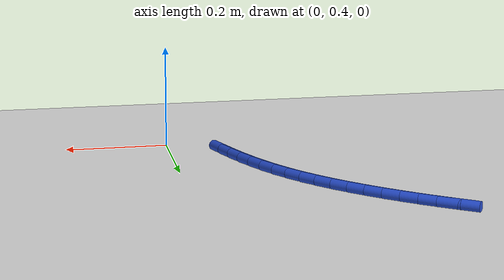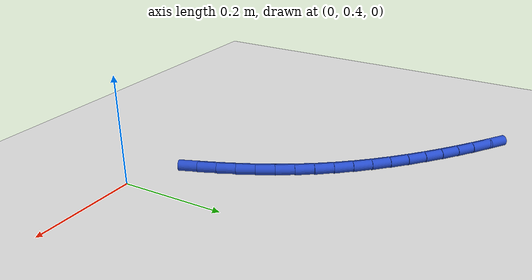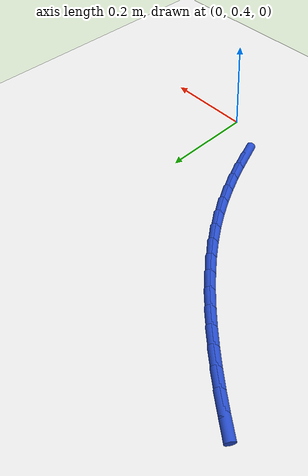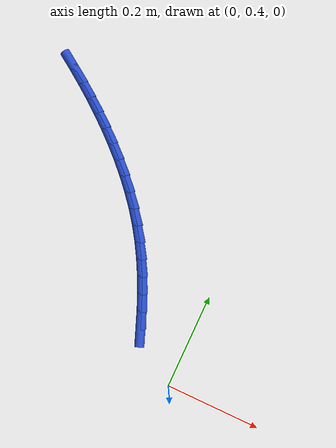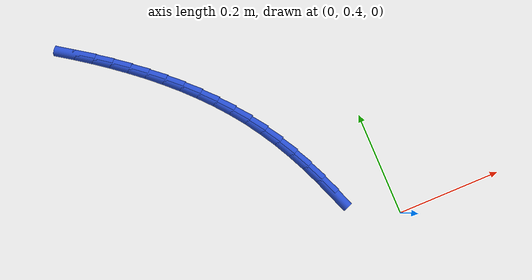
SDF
<sdf version="1.6">
 <world name="default">
  <model name="ground_plane">
   <static>1</static>
   <link name="link">
    <collision name="collision">
     <geometry><plane><normal>0 0 1</normal><size>100 100</size></plane></geometry>
     <surface><friction><ode><mu>100</mu><mu2>50</mu2></ode></friction></surface>
    </collision>
    <visual name="visual">
     <cast_shadows>0</cast_shadows>
     <geometry><plane><normal>0 0 1</normal><size>100 100</size></plane></geometry>
     <material>
      <script><uri>file://media/materials/scripts/gazebo.material</uri><name>Gazebo/WhiteGlow</name></script>
     </material>
    </visual>
   </link>
  </model>
  <model name="line">
   <link name="link_14">
    <pose>-0.10286140944806886 0.48466427148736574 0.01 0 1.57 -1.1949586788717386</pose>
    <collision name="collision">
     <geometry><cylinder><radius>0.01</radius><length>0.08</length></cylinder></geometry>
    </collision>
    <visual name="visual">
     <material>
      <script><name>Gazebo/Blue</name><uri>file://media/materials/scripts/gazebo.material</uri></script>
     </material>
     <geometry><cylinder><radius>0.01</radius><length>0.08</length></cylinder></geometry>
    </visual>
   </link>
   <link name="link_15">
    <pose>-0.11590505456979558 0.5177201066402711 0.01 0 1.57 -1.1605237380094044</pose>
    <collision name="collision">
     <geometry><cylinder><radius>0.01</radius><length>0.08</length></cylinder></geometry>
    </collision>
    <visual name="visual">
     <material>
      <script><name>Gazebo/Blue</name><uri>file://media/materials/scripts/gazebo.material</uri></script>
     </material>
     <geometry><cylinder><radius>0.01</radius><length>0.08</length></cylinder></geometry>
    </visual>
   </link>
   <link name="link_16">
    <pose>-0.13003497999350594 0.5502060301641614 0.01 0 1.57 -1.1221062574177487</pose>
    <collision name="collision">
     <geometry><cylinder><radius>0.01</radius><length>0.08</length></cylinder></geometry>
    </collision>
    <visual name="visual">
     <material>
      <script><name>Gazebo/Blue</name><uri>file://media/materials/scripts/gazebo.material</uri></script>
     </material>
     <geometry><cylinder><radius>0.01</radius><length>0.08</length></cylinder></geometry>
    </visual>
   </link>
   <link name="link_17">
    <pose>-0.14535711199621087 0.5820316289772426 0.01 0 1.57 -1.0796620651295834</pose>
    <collision name="collision">
     <geometry><cylinder><radius>0.01</radius><length>0.08</length></cylinder></geometry>
    </collision>
    <visual name="visual">
     <material>
      <script><name>Gazebo/Blue</name><uri>file://media/materials/scripts/gazebo.material</uri></script>
     </material>
     <geometry><cylinder><radius>0.01</radius><length>0.08</length></cylinder></geometry>
    </visual>
   </link>
   <link name="link_18">
    <pose>-0.16197737685492147 0.6131064899977213 0.01 0 1.57 -1.0332003728123056</pose>
    <collision name="collision">
     <geometry><cylinder><radius>0.01</radius><length>0.08</length></cylinder></geometry>
    </collision>
    <visual name="visual">
     <material>
      <script><name>Gazebo/Blue</name><uri>file://media/materials/scripts/gazebo.material</uri></script>
     </material>
     <geometry><cylinder><radius>0.01</radius><length>0.08</length></cylinder></geometry>
    </visual>
   </link>
   <link name="link_19">
    <pose>-0.18000170084664874 0.6433402001438037 0.01 0 1.57 -0.9828084889556159</pose>
    <collision name="collision">
     <geometry><cylinder><radius>0.01</radius><length>0.08</length></cylinder></geometry>
    </collision>
    <visual name="visual">
     <material>
      <script><name>Gazebo/Blue</name><uri>file://media/materials/scripts/gazebo.material</uri></script>
     </material>
     <geometry><cylinder><radius>0.01</radius><length>0.08</length></cylinder></geometry>
    </visual>
   </link>
   <link name="link_20">
    <pose>-0.19953587932387218 0.6726424052973401 0.01 0 1.57 -0.9305583617726472</pose>
    <collision name="collision">
     <geometry><cylinder><radius>0.01</radius><length>0.08</length></cylinder></geometry>
    </collision>
    <visual name="visual">
     <material>
      <script><name>Gazebo/Blue</name><uri>file://media/materials/scripts/gazebo.material</uri></script>
     </material>
     <geometry><cylinder><radius>0.01</radius><length>0.08</length></cylinder></geometry>
    </visual>
   </link>
   <link name="link_21">
    <pose>-0.22062325139379949 0.700950879359868 0.01 0 1.57 -0.8814752981085816</pose>
    <collision name="collision">
     <geometry><cylinder><radius>0.01</radius><length>0.08</length></cylinder></geometry>
    </collision>
    <visual name="visual">
     <material>
      <script><name>Gazebo/Blue</name><uri>file://media/materials/scripts/gazebo.material</uri></script>
     </material>
     <geometry><cylinder><radius>0.01</radius><length>0.08</length></cylinder></geometry>
    </visual>
   </link>
   <link name="link_22">
    <pose>-0.24314488133618367 0.7282764789089937 0.01 0 1.57 -0.836262044691703</pose>
    <collision name="collision">
     <geometry><cylinder><radius>0.01</radius><length>0.08</length></cylinder></geometry>
    </collision>
    <visual name="visual">
     <material>
      <script><name>Gazebo/Blue</name><uri>file://media/materials/scripts/gazebo.material</uri></script>
     </material>
     <geometry><cylinder><radius>0.01</radius><length>0.08</length></cylinder></geometry>
    </visual>
   </link>
   <link name="link_23">
    <pose>-0.266955818069513 0.7546417768941707 0.01 0 1.57 -0.7947716503147767</pose>
    <collision name="collision">
     <geometry><cylinder><radius>0.01</radius><length>0.08</length></cylinder></geometry>
    </collision>
    <visual name="visual">
     <material>
      <script><name>Gazebo/Blue</name><uri>file://media/materials/scripts/gazebo.material</uri></script>
     </material>
     <geometry><cylinder><radius>0.01</radius><length>0.08</length></cylinder></geometry>
    </visual>
   </link>
   <link name="link_24">
    <pose>-0.29191111051227586 0.7800693462648527 0.01 0 1.57 -0.7568272609245303</pose>
    <collision name="collision">
     <geometry><cylinder><radius>0.01</radius><length>0.08</length></cylinder></geometry>
    </collision>
    <visual name="visual">
     <material>
      <script><name>Gazebo/Blue</name><uri>file://media/materials/scripts/gazebo.material</uri></script>
     </material>
     <geometry><cylinder><radius>0.01</radius><length>0.08</length></cylinder></geometry>
    </visual>
   </link>
   <link name="link_25">
    <pose>-0.31786580758296057 0.8045817599704931 0.01 0 1.57 -0.7222384978069104</pose>
    <collision name="collision">
     <geometry><cylinder><radius>0.01</radius><length>0.08</length></cylinder></geometry>
    </collision>
    <visual name="visual">
     <material>
      <script><name>Gazebo/Blue</name><uri>file://media/materials/scripts/gazebo.material</uri></script>
     </material>
     <geometry><cylinder><radius>0.01</radius><length>0.08</length></cylinder></geometry>
    </visual>
   </link>
   <link name="link_26">
    <pose>-0.34467495820005556 0.8282015909605458 0.01 0 1.57 -0.6908139829027834</pose>
    <collision name="collision">
     <geometry><cylinder><radius>0.01</radius><length>0.08</length></cylinder></geometry>
    </collision>
    <visual name="visual">
     <material>
      <script><name>Gazebo/Blue</name><uri>file://media/materials/scripts/gazebo.material</uri></script>
     </material>
     <geometry><cylinder><radius>0.01</radius><length>0.08</length></cylinder></geometry>
    </visual>
   </link>
   <link name="link_27">
    <pose>-0.3721936112820491 0.8509514121844646 0.01 0 1.57 -0.6623706099893018</pose>
    <collision name="collision">
     <geometry><cylinder><radius>0.01</radius><length>0.08</length></cylinder></geometry>
    </collision>
    <visual name="visual">
     <material>
      <script><name>Gazebo/Blue</name><uri>file://media/materials/scripts/gazebo.material</uri></script>
     </material>
     <geometry><cylinder><radius>0.01</radius><length>0.08</length></cylinder></geometry>
    </visual>
   </link>
   <link name="link_28">
    <pose>-0.4002768157474295 0.8728537965917029 0.01 0 1.57 -0.6367402854858322</pose>
    <collision name="collision">
     <geometry><cylinder><radius>0.01</radius><length>0.08</length></cylinder></geometry>
    </collision>
    <visual name="visual">
     <material>
      <script><name>Gazebo/Blue</name><uri>file://media/materials/scripts/gazebo.material</uri></script>
     </material>
     <geometry><cylinder><radius>0.01</radius><length>0.08</length></cylinder></geometry>
    </visual>
   </link>
   <link name="link_29">
    <pose>-0.4287796205146852 0.8939313171317147 0.01 0 1.57 -0.6137748607162741</pose>
    <collision name="collision">
     <geometry><cylinder><radius>0.01</radius><length>0.08</length></cylinder></geometry>
    </collision>
    <visual name="visual">
     <material>
      <script><name>Gazebo/Blue</name><uri>file://media/materials/scripts/gazebo.material</uri></script>
     </material>
     <geometry><cylinder><radius>0.01</radius><length>0.08</length></cylinder></geometry>
    </visual>
   </link>
   <link name="link_30">
    <pose>-0.4575570745023046 0.9142065467539535 0.01 0 1.57 -0.5930610244994271</pose>
    <collision name="collision">
     <geometry><cylinder><radius>0.01</radius><length>0.08</length></cylinder></geometry>
    </collision>
    <visual name="visual">
     <material>
      <script><name>Gazebo/Blue</name><uri>file://media/materials/scripts/gazebo.material</uri></script>
     </material>
     <geometry><cylinder><radius>0.01</radius><length>0.08</length></cylinder></geometry>
    </visual>
   </link>
  </model>
 </world>
</sdf>
